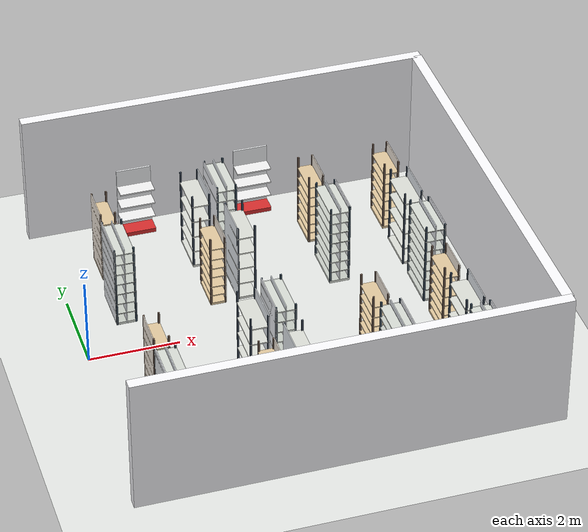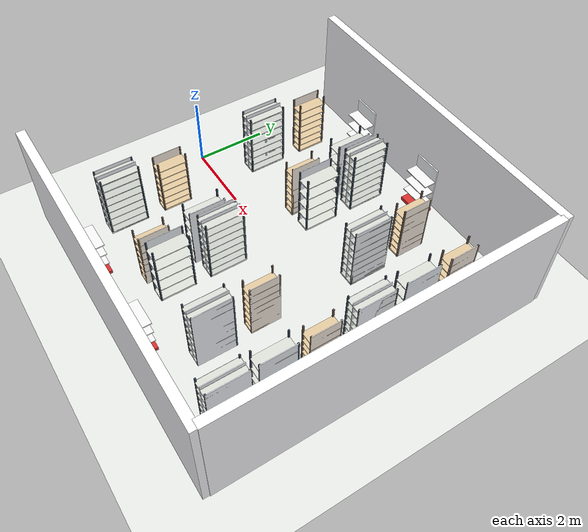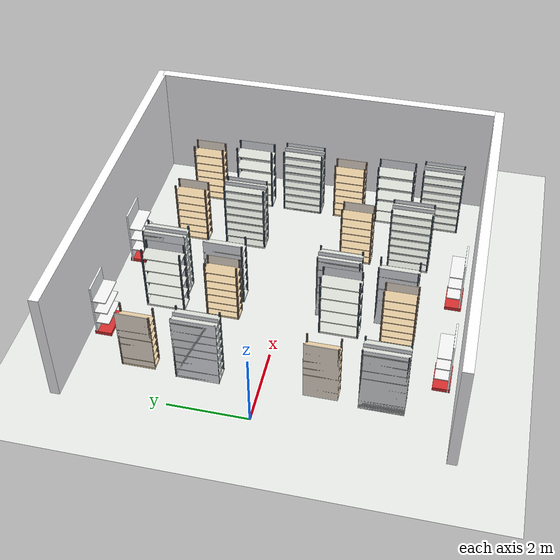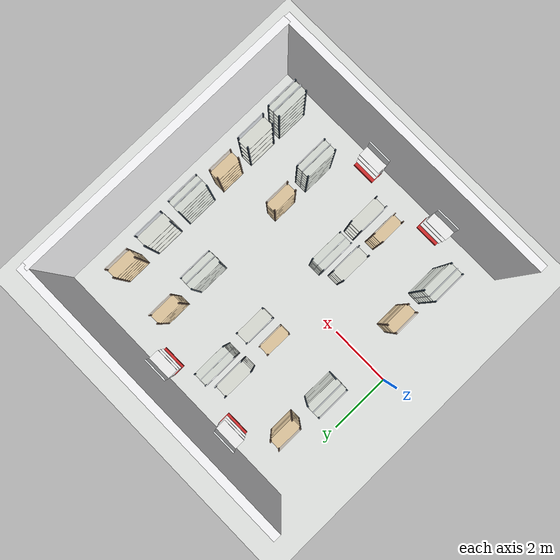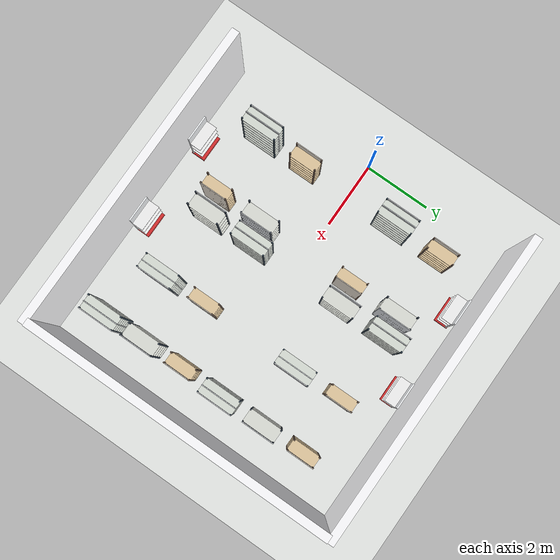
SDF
<sdf version="1.9">
 <world name="medipick_pharmacy_textured">
  <plugin filename="ignition-gazebo-physics-system" name="ignition::gazebo::systems::Physics"/>
  <plugin filename="ignition-gazebo-user-commands-system" name="ignition::gazebo::systems::UserCommands"/>
  <plugin filename="ignition-gazebo-scene-broadcaster-system" name="ignition::gazebo::systems::SceneBroadcaster"/>
  <plugin filename="ignition-gazebo-sensors-system" name="ignition::gazebo::systems::Sensors">
   <render_engine>ogre2</render_engine>
  </plugin>
  <plugin filename="ignition-gazebo-imu-system" name="ignition::gazebo::systems::Imu"/>
  <plugin filename="ignition-gazebo-contact-system" name="ignition::gazebo::systems::Contact"/>
  <gravity>0 0 -9.8</gravity>
  <scene>
   <ambient>0.74 0.75 0.77 1</ambient>
   <background>0.95 0.96 0.98 1</background>
   <shadows>true</shadows>
  </scene>
  <light name="sun" type="directional">
   <pose>0 0 12 0 0 0</pose>
   <diffuse>0.88 0.88 0.86 1</diffuse>
   <specular>0.25 0.25 0.25 1</specular>
   <direction>-0.45 0.18 -0.88</direction>
  </light>
  <model name="ground_plane">
   <static>true</static>
   <link name="link">
    <collision name="collision">
     <geometry><plane><normal>0 0 1</normal><size>18 14</size></plane></geometry>
    </collision>
    <visual name="visual">
     <geometry><plane><normal>0 0 1</normal><size>18 14</size></plane></geometry>
     <material>
      <ambient>0.84 0.85 0.84 1</ambient>
      <diffuse>0.90 0.91 0.90 1</diffuse>
      <specular>0.05 0.05 0.05 1</specular>
     </material>
    </visual>
   </link>
  </model>
  <model name="room_shell">
   <static>true</static>
   <link name="walls">
    <collision name="back_wall_collision">
     <pose>8.85 0 1.55 0 0 0</pose>
     <geometry><box><size>0.24 9.20 3.10</size></box></geometry>
    </collision>
    <collision name="left_wall_collision">
     <pose>4.35 4.65 1.55 0 0 0</pose>
     <geometry><box><size>9.20 0.24 3.10</size></box></geometry>
    </collision>
    <collision name="right_wall_collision">
     <pose>4.35 -4.65 1.55 0 0 0</pose>
     <geometry><box><size>9.20 0.24 3.10</size></box></geometry>
    </collision>
    <visual name="back_wall_visual">
     <pose>8.85 0 1.55 0 0 0</pose>
     <geometry><box><size>0.24 9.20 3.10</size></box></geometry>
     <material><ambient>0.96 0.97 0.98 1</ambient><diffuse>0.99 0.99 1.0 1</diffuse></material>
    </visual>
    <visual name="left_wall_visual">
     <pose>4.35 4.65 1.55 0 0 0</pose>
     <geometry><box><size>9.20 0.24 3.10</size></box></geometry>
     <material><ambient>0.96 0.97 0.98 1</ambient><diffuse>0.99 0.99 1.0 1</diffuse></material>
    </visual>
    <visual name="right_wall_visual">
     <pose>4.35 -4.65 1.55 0 0 0</pose>
     <geometry><box><size>9.20 0.24 3.10</size></box></geometry>
     <material><ambient>0.96 0.97 0.98 1</ambient><diffuse>0.99 0.99 1.0 1</diffuse></material>
    </visual>
   </link>
  </model>
  <include>
   <name>back_shelf_01</name>
   <uri>model://pharmacy_shelf_dense</uri>
   <pose>7.45 -3.45 0 0 0 0</pose>
  </include>
  <include><name>back_shelf_02</name><uri>model://pharmacy_shelf</uri><pose>7.45 -2.20 0 0 0 0</pose></include>
  <include>
   <name>back_shelf_03</name>
   <uri>model://pharmacy_shelf_compact</uri>
   <pose>7.45 -0.95 0 0 0 0</pose>
  </include>
  <include>
   <name>back_shelf_04</name>
   <uri>model://pharmacy_shelf_dense</uri>
   <pose>7.45 0.35 0 0 0 0</pose>
  </include>
  <include><name>back_shelf_05</name><uri>model://pharmacy_shelf</uri><pose>7.45 1.70 0 0 0 0</pose></include>
  <include>
   <name>back_shelf_06</name>
   <uri>model://pharmacy_shelf_compact</uri>
   <pose>7.45 3.00 0 0 0 0</pose>
  </include>
  <include>
   <name>aisle_a_left_01</name>
   <uri>model://pharmacy_shelf_dense</uri>
   <pose>5.70 -2.85 0 0 0 0</pose>
  </include>
  <include>
   <name>aisle_a_left_02</name>
   <uri>model://pharmacy_shelf_compact</uri>
   <pose>5.70 -1.45 0 0 0 0</pose>
  </include>
  <include>
   <name>aisle_a_left_04</name>
   <uri>model://pharmacy_shelf_dense</uri>
   <pose>5.70 1.55 0 0 0 0</pose>
  </include>
  <include>
   <name>aisle_a_left_05</name>
   <uri>model://pharmacy_shelf_compact</uri>
   <pose>5.70 3.00 0 0 0 0</pose>
  </include>
  <include>
   <name>aisle_a_right_01</name>
   <uri>model://pharmacy_shelf</uri>
   <pose>4.00 -2.80 0 0 0 3.141592653589793</pose>
  </include>
  <include>
   <name>aisle_a_right_02</name>
   <uri>model://pharmacy_shelf_dense</uri>
   <pose>4.00 -1.35 0 0 0 3.141592653589793</pose>
  </include>
  <include>
   <name>aisle_a_right_04</name>
   <uri>model://pharmacy_shelf</uri>
   <pose>4.00 1.55 0 0 0 3.141592653589793</pose>
  </include>
  <include>
   <name>aisle_a_right_05</name>
   <uri>model://pharmacy_shelf_dense</uri>
   <pose>4.00 3.05 0 0 0 3.141592653589793</pose>
  </include>
  <include>
   <name>aisle_b_left_01</name>
   <uri>model://pharmacy_shelf_compact</uri>
   <pose>3.00 -2.95 0 0 0 0</pose>
  </include>
  <include>
   <name>aisle_b_left_02</name>
   <uri>model://pharmacy_shelf</uri>
   <pose>3.00 -1.50 0 0 0 0</pose>
  </include>
  <include>
   <name>aisle_b_left_04</name>
   <uri>model://pharmacy_shelf_compact</uri>
   <pose>3.00 1.45 0 0 0 0</pose>
  </include>
  <include><name>aisle_b_left_05</name><uri>model://pharmacy_shelf</uri><pose>3.00 2.95 0 0 0 0</pose></include>
  <include>
   <name>aisle_b_right_01</name>
   <uri>model://pharmacy_shelf_dense</uri>
   <pose>1.30 -2.90 0 0 0 3.141592653589793</pose>
  </include>
  <include>
   <name>aisle_b_right_02</name>
   <uri>model://pharmacy_shelf_compact</uri>
   <pose>1.30 -1.45 0 0 0 3.141592653589793</pose>
  </include>
  <include>
   <name>aisle_b_right_04</name>
   <uri>model://pharmacy_shelf_dense</uri>
   <pose>1.30 1.50 0 0 0 3.141592653589793</pose>
  </include>
  <include>
   <name>aisle_b_right_05</name>
   <uri>model://pharmacy_shelf_compact</uri>
   <pose>1.30 3.00 0 0 0 3.141592653589793</pose>
  </include>
  <include>
   <name>endcap_a_top</name>
   <uri>model://pharmacy_endcap_display</uri>
   <pose>4.85 4.00 0 0 0 1.5707963267948966</pose>
  </include>
  <include>
   <name>endcap_a_bottom</name>
   <uri>model://pharmacy_endcap_display</uri>
   <pose>4.85 -4.00 0 0 0 -1.5707963267948966</pose>
  </include>
  <include>
   <name>endcap_b_top</name>
   <uri>model://pharmacy_endcap_display</uri>
   <pose>2.15 4.00 0 0 0 1.5707963267948966</pose>
  </include>
  <include>
   <name>endcap_b_bottom</name>
   <uri>model://pharmacy_endcap_display</uri>
   <pose>2.15 -4.00 0 0 0 -1.5707963267948966</pose>
  </include>
  <include>
   <name>aisle_b_right_04_l02_s03</name>
   <uri>model://textured_drug_003</uri>
   <pose>1.216 1.752 0.388 0 0 1.570796</pose>
  </include>
  <include>
   <name>aisle_b_right_04_l02_s04</name>
   <uri>model://textured_drug_004</uri>
   <pose>1.213 1.644 0.388 0 0 1.570796</pose>
  </include>
  <include>
   <name>aisle_b_right_04_l02_s05</name>
   <uri>model://textured_drug_005</uri>
   <pose>1.215 1.499 0.354 0 0 1.570796</pose>
  </include>
  <include>
   <name>aisle_b_right_04_l04_s03</name>
   <uri>model://textured_drug_003</uri>
   <pose>1.216 1.752 0.907 0 0 1.570796</pose>
  </include>
  <include>
   <name>aisle_b_right_04_l04_s04</name>
   <uri>model://textured_drug_004</uri>
   <pose>1.213 1.644 0.907 0 0 1.570796</pose>
  </include>
  <include>
   <name>aisle_b_right_04_l04_s05</name>
   <uri>model://textured_drug_005</uri>
   <pose>1.215 1.499 0.874 0 0 1.570796</pose>
  </include>
 </world>
</sdf>

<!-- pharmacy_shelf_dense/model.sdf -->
<sdf version="1.9">
  <model name="pharmacy_shelf_dense">
    <static>true</static>
    <link name="body">
      <collision name="left_post_collision">
        <pose>0.0 -0.52 0.99 0 0 0</pose>
        <geometry>
          <box>
            <size>0.04 0.04 1.98</size>
          </box>
        </geometry>
      </collision>
      <collision name="right_post_collision">
        <pose>0.0 0.52 0.99 0 0 0</pose>
        <geometry>
          <box>
            <size>0.04 0.04 1.98</size>
          </box>
        </geometry>
      </collision>
      <collision name="rear_left_post_collision">
        <pose>0.42 -0.52 0.99 0 0 0</pose>
        <geometry>
          <box>
            <size>0.04 0.04 1.98</size>
          </box>
        </geometry>
      </collision>
      <collision name="rear_right_post_collision">
        <pose>0.42 0.52 0.99 0 0 0</pose>
        <geometry>
          <box>
            <size>0.04 0.04 1.98</size>
          </box>
        </geometry>
      </collision>
      <collision name="back_panel_collision">
        <pose>0.43 0.0 0.99 0 0 0</pose>
        <geometry>
          <box>
            <size>0.02 1.08 1.98</size>
          </box>
        </geometry>
      </collision>
      <collision name="level_bottom_collision">
        <pose>0.21 0.0 0.03 0 0 0</pose>
        <geometry>
          <box>
            <size>0.46 1.08 0.06</size>
          </box>
        </geometry>
      </collision>
      <collision name="level_1_collision">
        <pose>0.21 0.0 0.29 0 0 0</pose>
        <geometry>
          <box>
            <size>0.46 1.08 0.025</size>
          </box>
        </geometry>
      </collision>
      <collision name="level_2_collision">
        <pose>0.21 0.0 0.55 0 0 0</pose>
        <geometry>
          <box>
            <size>0.46 1.08 0.025</size>
          </box>
        </geometry>
      </collision>
      <collision name="level_3_collision">
        <pose>0.21 0.0 0.81 0 0 0</pose>
        <geometry>
          <box>
            <size>0.46 1.08 0.025</size>
          </box>
        </geometry>
      </collision>
      <collision name="level_4_collision">
        <pose>0.21 0.0 1.07 0 0 0</pose>
        <geometry>
          <box>
            <size>0.46 1.08 0.025</size>
          </box>
        </geometry>
      </collision>
      <collision name="level_5_collision">
        <pose>0.21 0.0 1.33 0 0 0</pose>
        <geometry>
          <box>
            <size>0.46 1.08 0.025</size>
          </box>
        </geometry>
      </collision>
      <collision name="level_6_collision">
        <pose>0.21 0.0 1.59 0 0 0</pose>
        <geometry>
          <box>
            <size>0.46 1.08 0.025</size>
          </box>
        </geometry>
      </collision>
      <collision name="top_collision">
        <pose>0.21 0.0 1.85 0 0 0</pose>
        <geometry>
          <box>
            <size>0.46 1.08 0.025</size>
          </box>
        </geometry>
      </collision>

      <visual name="frame_visual">
        <pose>0.21 0.0 0.99 0 0 0</pose>
        <geometry>
          <box>
            <size>0.02 1.08 1.98</size>
          </box>
        </geometry>
        <material>
          <ambient>0.86 0.88 0.90 1</ambient>
          <diffuse>0.93 0.95 0.97 1</diffuse>
          <specular>0.08 0.08 0.08 1</specular>
        </material>
      </visual>
      <visual name="left_post_visual">
        <pose>0.0 -0.52 0.99 0 0 0</pose>
        <geometry><box><size>0.04 0.04 1.98</size></box></geometry>
        <material><ambient>0.18 0.24 0.29 1</ambient><diffuse>0.21 0.28 0.34 1</diffuse></material>
      </visual>
      <visual name="right_post_visual">
        <pose>0.0 0.52 0.99 0 0 0</pose>
        <geometry><box><size>0.04 0.04 1.98</size></box></geometry>
        <material><ambient>0.18 0.24 0.29 1</ambient><diffuse>0.21 0.28 0.34 1</diffuse></material>
      </visual>
      <visual name="rear_left_post_visual">
        <pose>0.42 -0.52 0.99 0 0 0</pose>
        <geometry><box><size>0.04 0.04 1.98</size></box></geometry>
        <material><ambient>0.18 0.24 0.29 1</ambient><diffuse>0.21 0.28 0.34 1</diffuse></material>
      </visual>
      <visual name="rear_right_post_visual">
        <pose>0.42 0.52 0.99 0 0 0</pose>
        <geometry><box><size>0.04 0.04 1.98</size></box></geometry>
        <material><ambient>0.18 0.24 0.29 1</ambient><diffuse>0.21 0.28 0.34 1</diffuse></material>
      </visual>
      <visual name="back_panel_visual">
        <pose>0.43 0.0 0.99 0 0 0</pose>
        <geometry><box><size>0.02 1.08 1.98</size></box></geometry>
        <material><ambient>0.88 0.90 0.93 1</ambient><diffuse>0.95 0.96 0.98 1</diffuse></material>
      </visual>
      <visual name="boards_visual">
        <pose>0.21 0.0 0.94 0 0 0</pose>
        <geometry>
          <box>
            <size>0.46 1.08 1.88</size>
          </box>
        </geometry>
        <material>
          <ambient>0.78 0.80 0.77 0.15</ambient>
          <diffuse>0.84 0.86 0.83 0.15</diffuse>
        </material>
      </visual>
      <visual name="level_bottom_visual">
        <pose>0.21 0.0 0.03 0 0 0</pose>
        <geometry><box><size>0.46 1.08 0.06</size></box></geometry>
        <material><ambient>0.78 0.80 0.77 1</ambient><diffuse>0.86 0.88 0.85 1</diffuse></material>
      </visual>
      <visual name="level_1_visual">
        <pose>0.21 0.0 0.29 0 0 0</pose>
        <geometry><box><size>0.46 1.08 0.025</size></box></geometry>
        <material><ambient>0.78 0.80 0.77 1</ambient><diffuse>0.86 0.88 0.85 1</diffuse></material>
      </visual>
      <visual name="level_2_visual">
        <pose>0.21 0.0 0.55 0 0 0</pose>
        <geometry><box><size>0.46 1.08 0.025</size></box></geometry>
        <material><ambient>0.78 0.80 0.77 1</ambient><diffuse>0.86 0.88 0.85 1</diffuse></material>
      </visual>
      <visual name="level_3_visual">
        <pose>0.21 0.0 0.81 0 0 0</pose>
        <geometry><box><size>0.46 1.08 0.025</size></box></geometry>
        <material><ambient>0.78 0.80 0.77 1</ambient><diffuse>0.86 0.88 0.85 1</diffuse></material>
      </visual>
      <visual name="level_4_visual">
        <pose>0.21 0.0 1.07 0 0 0</pose>
        <geometry><box><size>0.46 1.08 0.025</size></box></geometry>
        <material><ambient>0.78 0.80 0.77 1</ambient><diffuse>0.86 0.88 0.85 1</diffuse></material>
      </visual>
      <visual name="level_5_visual">
        <pose>0.21 0.0 1.33 0 0 0</pose>
        <geometry><box><size>0.46 1.08 0.025</size></box></geometry>
        <material><ambient>0.78 0.80 0.77 1</ambient><diffuse>0.86 0.88 0.85 1</diffuse></material>
      </visual>
      <visual name="level_6_visual">
        <pose>0.21 0.0 1.59 0 0 0</pose>
        <geometry><box><size>0.46 1.08 0.025</size></box></geometry>
        <material><ambient>0.78 0.80 0.77 1</ambient><diffuse>0.86 0.88 0.85 1</diffuse></material>
      </visual>
      <visual name="top_visual">
        <pose>0.21 0.0 1.85 0 0 0</pose>
        <geometry><box><size>0.46 1.08 0.025</size></box></geometry>
        <material><ambient>0.78 0.80 0.77 1</ambient><diffuse>0.86 0.88 0.85 1</diffuse></material>
      </visual>
    </link>
  </model>
</sdf>

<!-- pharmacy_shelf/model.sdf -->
<sdf version="1.9">
  <model name="pharmacy_shelf">
    <static>true</static>
    <link name="body">
      <collision name="left_post_collision">
        <pose>0.0 -0.48 0.95 0 0 0</pose>
        <geometry>
          <box>
            <size>0.04 0.04 1.90</size>
          </box>
        </geometry>
      </collision>
      <collision name="right_post_collision">
        <pose>0.0 0.48 0.95 0 0 0</pose>
        <geometry>
          <box>
            <size>0.04 0.04 1.90</size>
          </box>
        </geometry>
      </collision>
      <collision name="rear_left_post_collision">
        <pose>0.38 -0.48 0.95 0 0 0</pose>
        <geometry>
          <box>
            <size>0.04 0.04 1.90</size>
          </box>
        </geometry>
      </collision>
      <collision name="rear_right_post_collision">
        <pose>0.38 0.48 0.95 0 0 0</pose>
        <geometry>
          <box>
            <size>0.04 0.04 1.90</size>
          </box>
        </geometry>
      </collision>
      <collision name="bottom_board_collision">
        <pose>0.19 0.0 0.03 0 0 0</pose>
        <geometry>
          <box>
            <size>0.42 1.00 0.06</size>
          </box>
        </geometry>
      </collision>
      <collision name="shelf_level_1_collision">
        <pose>0.19 0.0 0.42 0 0 0</pose>
        <geometry>
          <box>
            <size>0.42 1.00 0.03</size>
          </box>
        </geometry>
      </collision>
      <collision name="shelf_level_2_collision">
        <pose>0.19 0.0 0.82 0 0 0</pose>
        <geometry>
          <box>
            <size>0.42 1.00 0.03</size>
          </box>
        </geometry>
      </collision>
      <collision name="shelf_level_3_collision">
        <pose>0.19 0.0 1.22 0 0 0</pose>
        <geometry>
          <box>
            <size>0.42 1.00 0.03</size>
          </box>
        </geometry>
      </collision>
      <collision name="shelf_top_collision">
        <pose>0.19 0.0 1.62 0 0 0</pose>
        <geometry>
          <box>
            <size>0.42 1.00 0.03</size>
          </box>
        </geometry>
      </collision>
      <collision name="back_panel_collision">
        <pose>0.39 0.0 0.95 0 0 0</pose>
        <geometry>
          <box>
            <size>0.02 1.00 1.90</size>
          </box>
        </geometry>
      </collision>

      <visual name="left_post_visual">
        <pose>0.0 -0.48 0.95 0 0 0</pose>
        <geometry>
          <box>
            <size>0.04 0.04 1.90</size>
          </box>
        </geometry>
        <material>
          <ambient>0.18 0.22 0.28 1</ambient>
          <diffuse>0.22 0.27 0.33 1</diffuse>
          <specular>0.25 0.25 0.25 1</specular>
        </material>
      </visual>
      <visual name="right_post_visual">
        <pose>0.0 0.48 0.95 0 0 0</pose>
        <geometry>
          <box>
            <size>0.04 0.04 1.90</size>
          </box>
        </geometry>
        <material>
          <ambient>0.18 0.22 0.28 1</ambient>
          <diffuse>0.22 0.27 0.33 1</diffuse>
          <specular>0.25 0.25 0.25 1</specular>
        </material>
      </visual>
      <visual name="rear_left_post_visual">
        <pose>0.38 -0.48 0.95 0 0 0</pose>
        <geometry>
          <box>
            <size>0.04 0.04 1.90</size>
          </box>
        </geometry>
        <material>
          <ambient>0.18 0.22 0.28 1</ambient>
          <diffuse>0.22 0.27 0.33 1</diffuse>
          <specular>0.25 0.25 0.25 1</specular>
        </material>
      </visual>
      <visual name="rear_right_post_visual">
        <pose>0.38 0.48 0.95 0 0 0</pose>
        <geometry>
          <box>
            <size>0.04 0.04 1.90</size>
          </box>
        </geometry>
        <material>
          <ambient>0.18 0.22 0.28 1</ambient>
          <diffuse>0.22 0.27 0.33 1</diffuse>
          <specular>0.25 0.25 0.25 1</specular>
        </material>
      </visual>
      <visual name="bottom_board_visual">
        <pose>0.19 0.0 0.03 0 0 0</pose>
        <geometry>
          <box>
            <size>0.42 1.00 0.06</size>
          </box>
        </geometry>
        <material>
          <ambient>0.78 0.79 0.76 1</ambient>
          <diffuse>0.86 0.87 0.84 1</diffuse>
          <specular>0.10 0.10 0.10 1</specular>
        </material>
      </visual>
      <visual name="shelf_level_1_visual">
        <pose>0.19 0.0 0.42 0 0 0</pose>
        <geometry>
          <box>
            <size>0.42 1.00 0.03</size>
          </box>
        </geometry>
        <material>
          <ambient>0.78 0.79 0.76 1</ambient>
          <diffuse>0.86 0.87 0.84 1</diffuse>
          <specular>0.10 0.10 0.10 1</specular>
        </material>
      </visual>
      <visual name="shelf_level_2_visual">
        <pose>0.19 0.0 0.82 0 0 0</pose>
        <geometry>
          <box>
            <size>0.42 1.00 0.03</size>
          </box>
        </geometry>
        <material>
          <ambient>0.78 0.79 0.76 1</ambient>
          <diffuse>0.86 0.87 0.84 1</diffuse>
          <specular>0.10 0.10 0.10 1</specular>
        </material>
      </visual>
      <visual name="shelf_level_3_visual">
        <pose>0.19 0.0 1.22 0 0 0</pose>
        <geometry>
          <box>
            <size>0.42 1.00 0.03</size>
          </box>
        </geometry>
        <material>
          <ambient>0.78 0.79 0.76 1</ambient>
          <diffuse>0.86 0.87 0.84 1</diffuse>
          <specular>0.10 0.10 0.10 1</specular>
        </material>
      </visual>
      <visual name="shelf_top_visual">
        <pose>0.19 0.0 1.62 0 0 0</pose>
        <geometry>
          <box>
            <size>0.42 1.00 0.03</size>
          </box>
        </geometry>
        <material>
          <ambient>0.78 0.79 0.76 1</ambient>
          <diffuse>0.86 0.87 0.84 1</diffuse>
          <specular>0.10 0.10 0.10 1</specular>
        </material>
      </visual>
      <visual name="back_panel_visual">
        <pose>0.39 0.0 0.95 0 0 0</pose>
        <geometry>
          <box>
            <size>0.02 1.00 1.90</size>
          </box>
        </geometry>
        <material>
          <ambient>0.82 0.84 0.88 1</ambient>
          <diffuse>0.92 0.94 0.96 1</diffuse>
          <specular>0.08 0.08 0.08 1</specular>
        </material>
      </visual>
    </link>
  </model>
</sdf>

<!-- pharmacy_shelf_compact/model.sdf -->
<sdf version="1.9">
  <model name="pharmacy_shelf_compact">
    <static>true</static>
    <link name="body">
      <collision name="left_post_collision">
        <pose>0.0 -0.40 0.88 0 0 0</pose>
        <geometry><box><size>0.04 0.04 1.76</size></box></geometry>
      </collision>
      <collision name="right_post_collision">
        <pose>0.0 0.40 0.88 0 0 0</pose>
        <geometry><box><size>0.04 0.04 1.76</size></box></geometry>
      </collision>
      <collision name="rear_left_post_collision">
        <pose>0.32 -0.40 0.88 0 0 0</pose>
        <geometry><box><size>0.04 0.04 1.76</size></box></geometry>
      </collision>
      <collision name="rear_right_post_collision">
        <pose>0.32 0.40 0.88 0 0 0</pose>
        <geometry><box><size>0.04 0.04 1.76</size></box></geometry>
      </collision>
      <collision name="back_panel_collision">
        <pose>0.33 0.0 0.88 0 0 0</pose>
        <geometry><box><size>0.02 0.84 1.76</size></box></geometry>
      </collision>
      <collision name="bottom_board_collision">
        <pose>0.16 0.0 0.03 0 0 0</pose>
        <geometry><box><size>0.36 0.84 0.06</size></box></geometry>
      </collision>
      <collision name="level_1_collision">
        <pose>0.16 0.0 0.25 0 0 0</pose>
        <geometry><box><size>0.36 0.84 0.025</size></box></geometry>
      </collision>
      <collision name="level_2_collision">
        <pose>0.16 0.0 0.48 0 0 0</pose>
        <geometry><box><size>0.36 0.84 0.025</size></box></geometry>
      </collision>
      <collision name="level_3_collision">
        <pose>0.16 0.0 0.74 0 0 0</pose>
        <geometry><box><size>0.36 0.84 0.025</size></box></geometry>
      </collision>
      <collision name="level_4_collision">
        <pose>0.16 0.0 0.97 0 0 0</pose>
        <geometry><box><size>0.36 0.84 0.025</size></box></geometry>
      </collision>
      <collision name="level_5_collision">
        <pose>0.16 0.0 1.21 0 0 0</pose>
        <geometry><box><size>0.36 0.84 0.025</size></box></geometry>
      </collision>
      <collision name="level_6_collision">
        <pose>0.16 0.0 1.48 0 0 0</pose>
        <geometry><box><size>0.36 0.84 0.025</size></box></geometry>
      </collision>

      <visual name="left_post_visual">
        <pose>0.0 -0.40 0.88 0 0 0</pose>
        <geometry><box><size>0.04 0.04 1.76</size></box></geometry>
        <material><ambient>0.30 0.24 0.20 1</ambient><diffuse>0.42 0.34 0.29 1</diffuse></material>
      </visual>
      <visual name="right_post_visual">
        <pose>0.0 0.40 0.88 0 0 0</pose>
        <geometry><box><size>0.04 0.04 1.76</size></box></geometry>
        <material><ambient>0.30 0.24 0.20 1</ambient><diffuse>0.42 0.34 0.29 1</diffuse></material>
      </visual>
      <visual name="rear_left_post_visual">
        <pose>0.32 -0.40 0.88 0 0 0</pose>
        <geometry><box><size>0.04 0.04 1.76</size></box></geometry>
        <material><ambient>0.30 0.24 0.20 1</ambient><diffuse>0.42 0.34 0.29 1</diffuse></material>
      </visual>
      <visual name="rear_right_post_visual">
        <pose>0.32 0.40 0.88 0 0 0</pose>
        <geometry><box><size>0.04 0.04 1.76</size></box></geometry>
        <material><ambient>0.30 0.24 0.20 1</ambient><diffuse>0.42 0.34 0.29 1</diffuse></material>
      </visual>
      <visual name="back_panel_visual">
        <pose>0.33 0.0 0.88 0 0 0</pose>
        <geometry><box><size>0.02 0.84 1.76</size></box></geometry>
        <material><ambient>0.90 0.86 0.80 1</ambient><diffuse>0.97 0.93 0.88 1</diffuse></material>
      </visual>
      <visual name="bottom_board_visual">
        <pose>0.16 0.0 0.03 0 0 0</pose>
        <geometry><box><size>0.36 0.84 0.06</size></box></geometry>
        <material><ambient>0.78 0.69 0.55 1</ambient><diffuse>0.88 0.78 0.62 1</diffuse></material>
      </visual>
      <visual name="level_1_visual">
        <pose>0.16 0.0 0.25 0 0 0</pose>
        <geometry><box><size>0.36 0.84 0.025</size></box></geometry>
        <material><ambient>0.78 0.69 0.55 1</ambient><diffuse>0.88 0.78 0.62 1</diffuse></material>
      </visual>
      <visual name="level_2_visual">
        <pose>0.16 0.0 0.48 0 0 0</pose>
        <geometry><box><size>0.36 0.84 0.025</size></box></geometry>
        <material><ambient>0.78 0.69 0.55 1</ambient><diffuse>0.88 0.78 0.62 1</diffuse></material>
      </visual>
      <visual name="level_3_visual">
        <pose>0.16 0.0 0.74 0 0 0</pose>
        <geometry><box><size>0.36 0.84 0.025</size></box></geometry>
        <material><ambient>0.78 0.69 0.55 1</ambient><diffuse>0.88 0.78 0.62 1</diffuse></material>
      </visual>
      <visual name="level_4_visual">
        <pose>0.16 0.0 0.97 0 0 0</pose>
        <geometry><box><size>0.36 0.84 0.025</size></box></geometry>
        <material><ambient>0.78 0.69 0.55 1</ambient><diffuse>0.88 0.78 0.62 1</diffuse></material>
      </visual>
      <visual name="level_5_visual">
        <pose>0.16 0.0 1.21 0 0 0</pose>
        <geometry><box><size>0.36 0.84 0.025</size></box></geometry>
        <material><ambient>0.78 0.69 0.55 1</ambient><diffuse>0.88 0.78 0.62 1</diffuse></material>
      </visual>
      <visual name="level_6_visual">
        <pose>0.16 0.0 1.48 0 0 0</pose>
        <geometry><box><size>0.36 0.84 0.025</size></box></geometry>
        <material><ambient>0.78 0.69 0.55 1</ambient><diffuse>0.88 0.78 0.62 1</diffuse></material>
      </visual>
    </link>
  </model>
</sdf>

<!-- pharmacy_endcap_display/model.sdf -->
<sdf version="1.9">
  <model name="pharmacy_endcap_display">
    <static>true</static>
    <link name="body">
      <collision name="base_collision">
        <pose>0.18 0 0.05 0 0 0</pose>
        <geometry><box><size>0.42 0.78 0.10</size></box></geometry>
      </collision>
      <collision name="back_panel_collision">
        <pose>0.34 0 0.78 0 0 0</pose>
        <geometry><box><size>0.04 0.78 1.56</size></box></geometry>
      </collision>
      <collision name="level_1_collision">
        <pose>0.17 0 0.42 0 0 0</pose>
        <geometry><box><size>0.36 0.78 0.03</size></box></geometry>
      </collision>
      <collision name="level_2_collision">
        <pose>0.17 0 0.78 0 0 0</pose>
        <geometry><box><size>0.36 0.78 0.03</size></box></geometry>
      </collision>
      <collision name="level_3_collision">
        <pose>0.17 0 1.14 0 0 0</pose>
        <geometry><box><size>0.36 0.78 0.03</size></box></geometry>
      </collision>

      <visual name="base_visual">
        <pose>0.18 0 0.05 0 0 0</pose>
        <geometry><box><size>0.42 0.78 0.10</size></box></geometry>
        <material><ambient>0.68 0.14 0.14 1</ambient><diffuse>0.84 0.18 0.18 1</diffuse></material>
      </visual>
      <visual name="back_panel_visual">
        <pose>0.34 0 0.78 0 0 0</pose>
        <geometry><box><size>0.04 0.78 1.56</size></box></geometry>
        <material><ambient>0.92 0.93 0.94 1</ambient><diffuse>0.97 0.98 0.99 1</diffuse></material>
      </visual>
      <visual name="level_1_visual">
        <pose>0.17 0 0.42 0 0 0</pose>
        <geometry><box><size>0.36 0.78 0.03</size></box></geometry>
        <material><ambient>0.85 0.85 0.85 1</ambient><diffuse>0.95 0.95 0.95 1</diffuse></material>
      </visual>
      <visual name="level_2_visual">
        <pose>0.17 0 0.78 0 0 0</pose>
        <geometry><box><size>0.36 0.78 0.03</size></box></geometry>
        <material><ambient>0.85 0.85 0.85 1</ambient><diffuse>0.95 0.95 0.95 1</diffuse></material>
      </visual>
      <visual name="level_3_visual">
        <pose>0.17 0 1.14 0 0 0</pose>
        <geometry><box><size>0.36 0.78 0.03</size></box></geometry>
        <material><ambient>0.85 0.85 0.85 1</ambient><diffuse>0.95 0.95 0.95 1</diffuse></material>
      </visual>
    </link>
  </model>
</sdf>

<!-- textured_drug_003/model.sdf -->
<sdf version="1.9">
  <model name="textured_drug_003">
    <static>false</static>
    <self_collide>false</self_collide>
    <link name="body">
      <inertial>
        <pose>0 0 0.080000 0 0 0</pose>
        <mass>0.055844</mass>
        <inertia>
          <ixx>0.00012073</ixx>
          <ixy>0.0</ixy>
          <ixz>0.0</ixz>
          <iyy>0.00015332</iyy>
          <iyz>0.0</iyz>
          <izz>0.00003578</izz>
        </inertia>
      </inertial>
      <collision name="collision">
        <pose>0 0 0.080000 0 0 0</pose>
        <geometry><box><size>0.085704 0.018511 0.160000</size></box></geometry>
        <surface>
          <friction>
            <ode>
              <mu>1.300</mu>
              <mu2>1.300</mu2>
            </ode>
          </friction>
          <contact>
            <ode>
              <kp>120000.0</kp>
              <kd>8.0</kd>
            </ode>
          </contact>
        </surface>
      </collision>
      <visual name="visual">
        <pose>0 0 0.080000 0 0 0</pose>
        <geometry>
          <mesh>
            <uri>meshes/model.obj</uri>
            <scale>1 1.350000 1.000000</scale>
          </mesh>
        </geometry>
      </visual>
    </link>
  </model>
</sdf>

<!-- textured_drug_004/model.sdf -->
<sdf version="1.9">
  <model name="textured_drug_004">
    <static>false</static>
    <self_collide>false</self_collide>
    <link name="body">
      <inertial>
        <pose>0 0 0.080000 0 0 0</pose>
        <mass>0.091413</mass>
        <inertia>
          <ixx>0.00019929</ixx>
          <ixy>0.0</ixy>
          <ixz>0.0</ixz>
          <iyy>0.00028660</iyy>
          <iyz>0.0</iyz>
          <izz>0.00009586</izz>
        </inertia>
      </inertial>
      <collision name="collision">
        <pose>0 0 0.080000 0 0 0</pose>
        <geometry><box><size>0.109648 0.023684 0.160000</size></box></geometry>
        <surface>
          <friction>
            <ode>
              <mu>1.300</mu>
              <mu2>1.300</mu2>
            </ode>
          </friction>
          <contact>
            <ode>
              <kp>120000.0</kp>
              <kd>8.0</kd>
            </ode>
          </contact>
        </surface>
      </collision>
      <visual name="visual">
        <pose>0 0 0.080000 0 0 0</pose>
        <geometry>
          <mesh>
            <uri>meshes/model.obj</uri>
            <scale>1 1.350000 1.000000</scale>
          </mesh>
        </geometry>
      </visual>
    </link>
  </model>
</sdf>

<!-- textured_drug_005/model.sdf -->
<sdf version="1.9">
  <model name="textured_drug_005">
    <static>false</static>
    <self_collide>false</self_collide>
    <link name="body">
      <inertial>
        <pose>0 0 0.046761 0 0 0</pose>
        <mass>0.066502</mass>
        <inertia>
          <ixx>0.00005073</ixx>
          <ixy>0.0</ixy>
          <ixz>0.0</ixz>
          <iyy>0.00019034</iyy>
          <iyz>0.0</iyz>
          <izz>0.00014413</izz>
        </inertia>
      </inertial>
      <collision name="collision">
        <pose>0 0 0.046761 0 0 0</pose>
        <geometry><box><size>0.160000 0.020201 0.093522</size></box></geometry>
        <surface>
          <friction>
            <ode>
              <mu>1.300</mu>
              <mu2>1.300</mu2>
            </ode>
          </friction>
          <contact>
            <ode>
              <kp>120000.0</kp>
              <kd>8.0</kd>
            </ode>
          </contact>
        </surface>
      </collision>
      <visual name="visual">
        <pose>0 0 0.046761 0 0 0</pose>
        <geometry>
          <mesh>
            <uri>meshes/model.obj</uri>
            <scale>1 1.350000 1.000000</scale>
          </mesh>
        </geometry>
      </visual>
    </link>
  </model>
</sdf>
